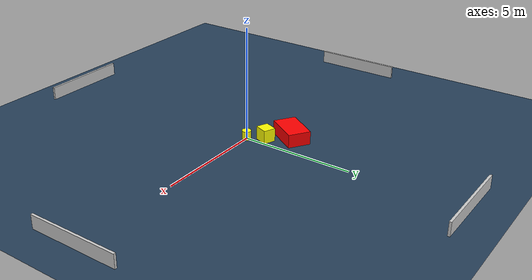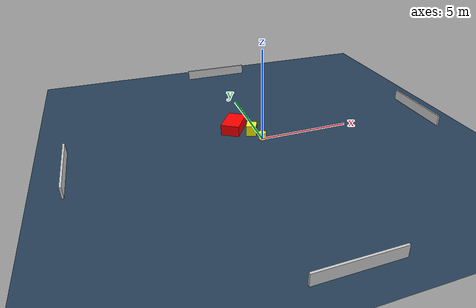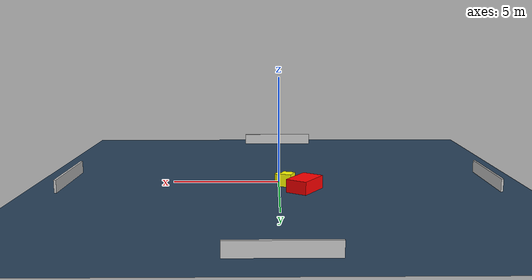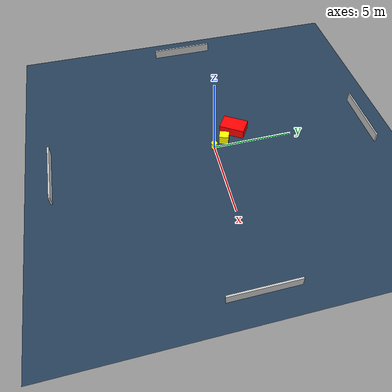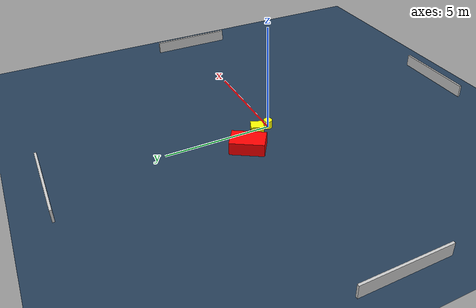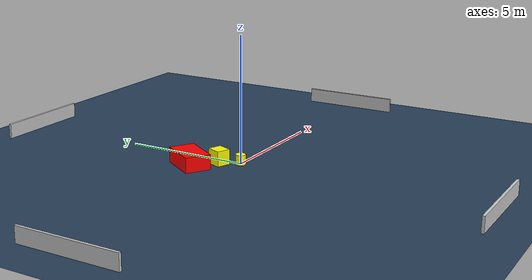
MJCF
<?xml version="1.0" ?>
<mujoco model="generated_environment">
  <option timestep="0.01" integrator="RK4" cone="elliptic"/>
  <default>
    <geom density="1"/>
  </default>
  <asset>
    <texture builtin="gradient" height="3072" name="skybox" rgb1="0.3 0.5 0.7" rgb2="0 0 0" type="skybox" width="512"/>
    <texture builtin="checker" height="300" name="groundplane" rgb1="0.2 0.3 0.4" rgb2="0.1 0.2 0.3" type="2d" width="300"/>
    <material name="groundplane" reflectance="0.2" texrepeat="5 5" texture="groundplane"/>
  </asset>
  <worldbody>
    <light dir="0 0 -1" directional="true" pos="0 0 1.5"/>
    <geom condim="3" friction="0.5 0.005 0.001" material="groundplane" name="floor" pos="0 0 0" size="0 0 0.05" type="plane"/>
    <body name="walls">
      <geom name="wall_1" condim="4" pos="-10.0 0.0 0.3" rgba="0.800000011920929 0.800000011920929 0.800000011920929 1.0" size="0.05 2.0 0.3" type="box"/>
      <geom name="wall_2" condim="4" pos="10.0 0.0 0.3" rgba="0.800000011920929 0.800000011920929 0.800000011920929 1.0" size="0.05 2.0 0.3" type="box"/>
      <geom name="wall_3" condim="4" pos="0.0 -10.0 0.3" rgba="0.800000011920929 0.800000011920929 0.800000011920929 1.0" size="2.0 0.05 0.3" type="box"/>
      <geom name="wall_4" condim="4" pos="0.0 10.0 0.3" rgba="0.800000011920929 0.800000011920929 0.800000011920929 1.0" size="2.0 0.05 0.3" type="box"/>
    </body>
    <body name="robot">
      <joint name="joint_x" type="slide" pos="0 0 0" axis="1 0 0"/>
      <joint name="joint_y" type="slide" pos="0 0 0" axis="0 1 0"/>
      <geom name="robot" type="cylinder" pos="0.0 0.0 0.2" size="0.2 0.2 0.0" mass="5.0" friction="1.0 0.005 0.0001" condim="4" rgba="1.0 1.0 0.0 1.0"/>
    </body>
    <body name="obstacle_1_movable">
      <geom name="obstacle_1_movable" condim="4" pos="-0.3768135696581415 0.7384505462618572 0.3" euler="0 0 338.2211432851604" friction="0.0 0.005 0.001" rgba="1.0 1.0 0.0 1.0" size="0.2748897534684081 0.29653366205901843 0.3" type="box" mass="0.1"/>
      <joint type="free"/>
    </body>
    <body name="obstacle_2_static">
      <geom name="obstacle_2_static" condim="4" pos="-1.1469036419285088 1.5712102893947886 0.3" euler="0 0 57.20044273340896" friction="0.0 0.005 0.001" rgba="1.0 0.0 0.0 1.0" size="0.7859911078682478 0.5095069550302015 0.3" type="box"/>
    </body>
  </worldbody>
  <actuator>
    <motor name="actuator_x" joint="joint_x" gear="1" ctrlrange="-1 1"/>
    <motor name="actuator_y" joint="joint_y" gear="1" ctrlrange="-1 1"/>
  </actuator>
</mujoco>
